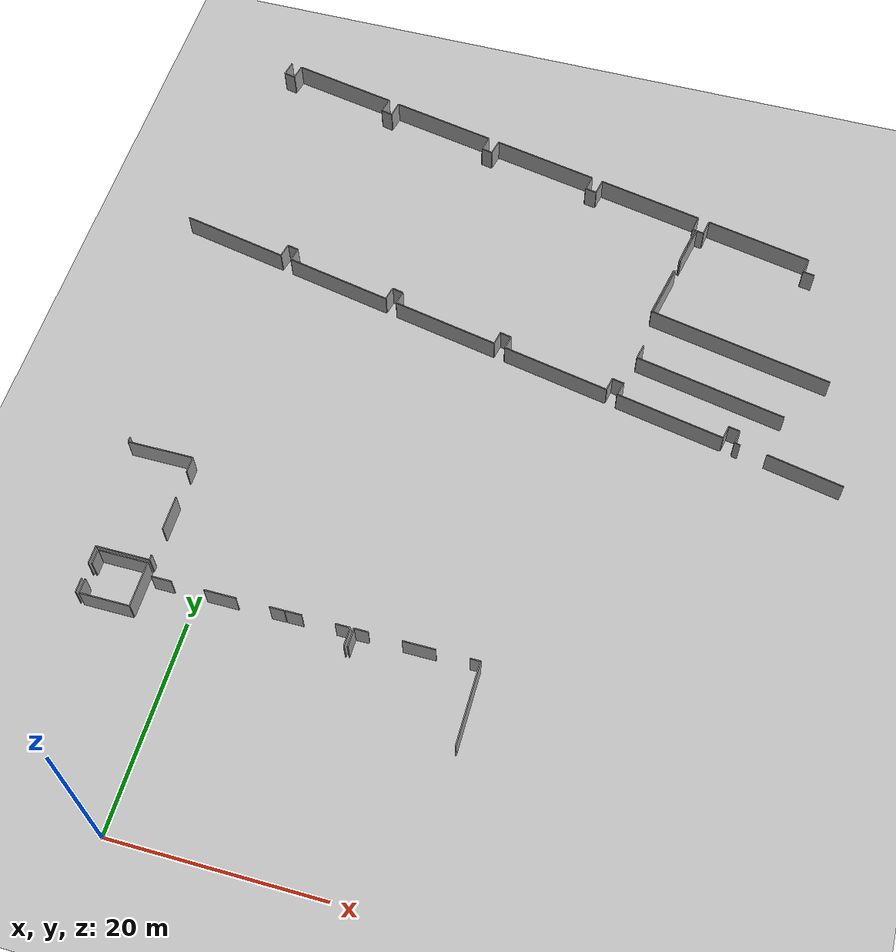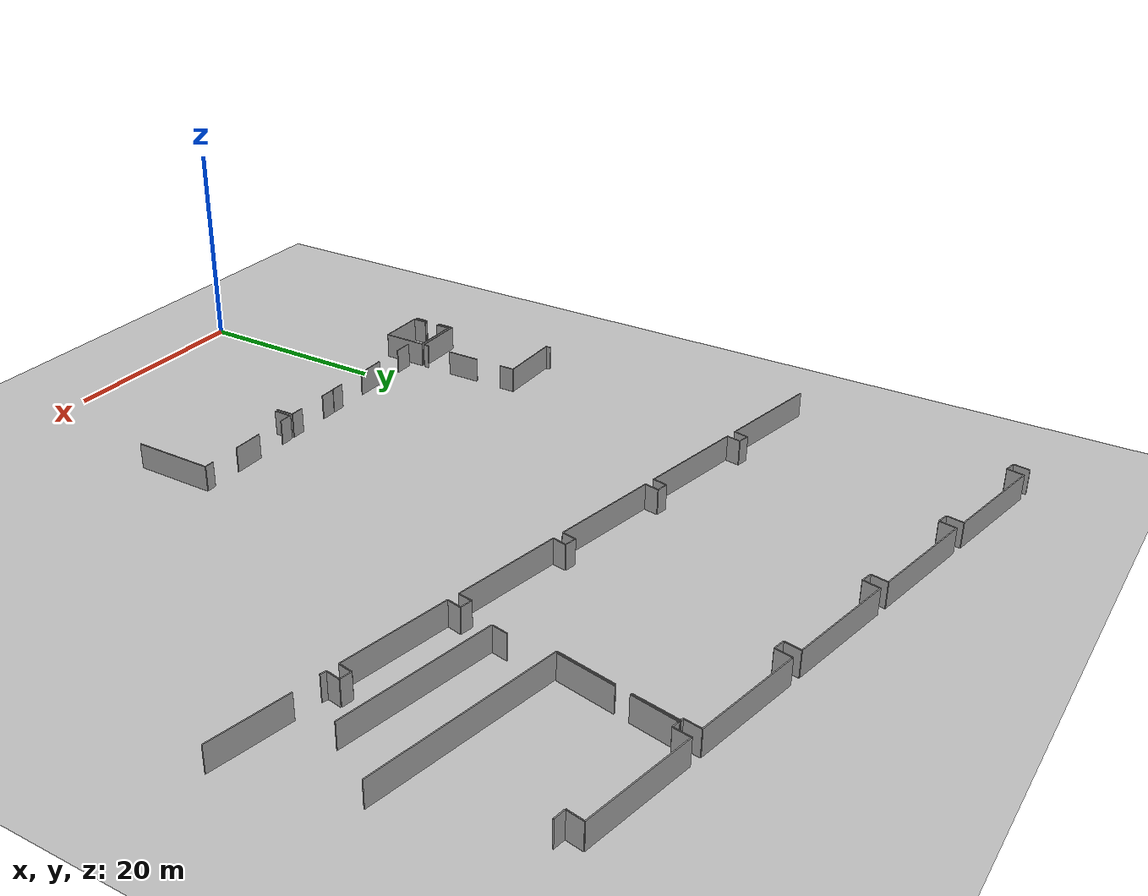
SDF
<sdf version="1.6">
 <world name="default">
  <model name="ground_plane">
   <static>1</static>
   <link name="link">
    <collision name="collision">
     <geometry><plane><normal>0 0 1</normal><size>100 100</size></plane></geometry>
     <surface><friction><ode><mu>100</mu><mu2>50</mu2></ode></friction></surface>
    </collision>
    <visual name="visual">
     <cast_shadows>0</cast_shadows>
     <geometry><plane><normal>0 0 1</normal><size>100 100</size></plane></geometry>
     <material>
      <script><uri>file://media/materials/scripts/gazebo.material</uri><name>Gazebo/Grey</name></script>
     </material>
    </visual>
   </link>
  </model>
  <model name="0510045922_A-40">
   <static>1</static>
   <link name="Wall_151">
    <collision name="Wall_151_Collision">
     <geometry><box><size>1.56576372229 0.1 2.5</size></box></geometry>
     <pose>0.782881861144 0 1.25 0 0 0</pose>
    </collision>
    <visual name="Wall_151_Visual">
     <pose>0.782881861144 0 1.25 0 0 0</pose>
     <geometry><box><size>1.56576372229 0.1 2.5</size></box></geometry>
     <material>
      <script><uri>file://media/materials/scripts/gazebo.material</uri><name>Gazebo/Grey</name></script>
      <ambient>1 1 1 1</ambient>
     </material>
    </visual>
    <pose>122.218771049 -16.4647391498 0 0 0 -1.75841792937</pose>
   </link>
   <link name="Wall_152">
    <collision name="Wall_152_Collision">
     <geometry><box><size>1.18365096837 0.1 2.5</size></box></geometry>
     <pose>0.591825484186 0 1.25 0 0 0</pose>
    </collision>
    <visual name="Wall_152_Visual">
     <pose>0.591825484186 0 1.25 0 0 0</pose>
     <geometry><box><size>1.18365096837 0.1 2.5</size></box></geometry>
     <material>
      <script><uri>file://media/materials/scripts/gazebo.material</uri><name>Gazebo/Grey</name></script>
      <ambient>1 1 1 1</ambient>
     </material>
    </visual>
    <pose>121.926720468 -18.0030247188 0 0 0 -0.196679619774</pose>
   </link>
   <link name="Wall_153">
    <collision name="Wall_153_Collision">
     <geometry><box><size>1.58743881891 0.1 2.5</size></box></geometry>
     <pose>0.793719409457 0 1.25 0 0 0</pose>
    </collision>
    <visual name="Wall_153_Visual">
     <pose>0.793719409457 0 1.25 0 0 0</pose>
     <geometry><box><size>1.58743881891 0.1 2.5</size></box></geometry>
     <material>
      <script><uri>file://media/materials/scripts/gazebo.material</uri><name>Gazebo/Grey</name></script>
      <ambient>1 1 1 1</ambient>
     </material>
    </visual>
    <pose>123.08755163 -18.2343267459 0 0 0 1.38250741131</pose>
   </link>
   <link name="Wall_154">
    <collision name="Wall_154_Collision">
     <geometry><box><size>10.840457798 0.1 2.5</size></box></geometry>
     <pose>5.42022889901 0 1.25 0 0 0</pose>
    </collision>
    <visual name="Wall_154_Visual">
     <pose>5.42022889901 0 1.25 0 0 0</pose>
     <geometry><box><size>10.840457798 0.1 2.5</size></box></geometry>
     <material>
      <script><uri>file://media/materials/scripts/gazebo.material</uri><name>Gazebo/Grey</name></script>
      <ambient>1 1 1 1</ambient>
     </material>
    </visual>
    <pose>123.384685772 -16.6749443986 0 0 0 -0.190318612014</pose>
   </link>
   <link name="Wall_155">
    <collision name="Wall_155_Collision">
     <geometry><box><size>1.60413812407 0.1 2.5</size></box></geometry>
     <pose>0.802069062037 0 1.25 0 0 0</pose>
    </collision>
    <visual name="Wall_155_Visual">
     <pose>0.802069062037 0 1.25 0 0 0</pose>
     <geometry><box><size>1.60413812407 0.1 2.5</size></box></geometry>
     <material>
      <script><uri>file://media/materials/scripts/gazebo.material</uri><name>Gazebo/Grey</name></script>
      <ambient>1 1 1 1</ambient>
     </material>
    </visual>
    <pose>134.029408401 -18.7256529199 0 0 0 -1.76371708743</pose>
   </link>
   <link name="Wall_156">
    <collision name="Wall_156_Collision">
     <geometry><box><size>1.18715771297 0.1 2.5</size></box></geometry>
     <pose>0.593578856483 0 1.25 0 0 0</pose>
    </collision>
    <visual name="Wall_156_Visual">
     <pose>0.593578856483 0 1.25 0 0 0</pose>
     <geometry><box><size>1.18715771297 0.1 2.5</size></box></geometry>
     <material>
      <script><uri>file://media/materials/scripts/gazebo.material</uri><name>Gazebo/Grey</name></script>
      <ambient>1 1 1 1</ambient>
     </material>
    </visual>
    <pose>133.721852958 -20.3000317723 0 0 0 -0.229607243412</pose>
   </link>
   <link name="Wall_157">
    <collision name="Wall_157_Collision">
     <geometry><box><size>1.61920516432 0.1 2.5</size></box></geometry>
     <pose>0.809602582161 0 1.25 0 0 0</pose>
    </collision>
    <visual name="Wall_157_Visual">
     <pose>0.809602582161 0 1.25 0 0 0</pose>
     <geometry><box><size>1.61920516432 0.1 2.5</size></box></geometry>
     <material>
      <script><uri>file://media/materials/scripts/gazebo.material</uri><name>Gazebo/Grey</name></script>
      <ambient>1 1 1 1</ambient>
     </material>
    </visual>
    <pose>134.877854737 -20.5702230412 0 0 0 1.37937323457</pose>
   </link>
   <link name="Wall_158">
    <collision name="Wall_158_Collision">
     <geometry><box><size>10.8308114585 0.1 2.5</size></box></geometry>
     <pose>5.41540572925 0 1.25 0 0 0</pose>
    </collision>
    <visual name="Wall_158_Visual">
     <pose>5.41540572925 0 1.25 0 0 0</pose>
     <geometry><box><size>10.8308114585 0.1 2.5</size></box></geometry>
     <material>
      <script><uri>file://media/materials/scripts/gazebo.material</uri><name>Gazebo/Grey</name></script>
      <ambient>1 1 1 1</ambient>
     </material>
    </visual>
    <pose>135.185918536 -18.9805935058 0 0 0 -0.190657501931</pose>
   </link>
   <link name="Wall_159">
    <collision name="Wall_159_Collision">
     <geometry><box><size>1.58493059939 0.1 2.5</size></box></geometry>
     <pose>0.792465299693 0 1.25 0 0 0</pose>
    </collision>
    <visual name="Wall_159_Visual">
     <pose>0.792465299693 0 1.25 0 0 0</pose>
     <geometry><box><size>1.58493059939 0.1 2.5</size></box></geometry>
     <material>
      <script><uri>file://media/materials/scripts/gazebo.material</uri><name>Gazebo/Grey</name></script>
      <ambient>1 1 1 1</ambient>
     </material>
    </visual>
    <pose>145.820474042 -21.0330812734 0 0 0 -1.76772011439</pose>
   </link>
   <link name="Wall_160">
    <collision name="Wall_160_Collision">
     <geometry><box><size>1.14771959508 0.1 2.5</size></box></geometry>
     <pose>0.573859797541 0 1.25 0 0 0</pose>
    </collision>
    <visual name="Wall_160_Visual">
     <pose>0.573859797541 0 1.25 0 0 0</pose>
     <geometry><box><size>1.14771959508 0.1 2.5</size></box></geometry>
     <material>
      <script><uri>file://media/materials/scripts/gazebo.material</uri><name>Gazebo/Grey</name></script>
      <ambient>1 1 1 1</ambient>
     </material>
    </visual>
    <pose>145.510376819 -22.5873800597 0 0 0 -0.220590634597</pose>
   </link>
   <link name="Wall_161">
    <collision name="Wall_161_Collision">
     <geometry><box><size>1.61166854661 0.1 2.5</size></box></geometry>
     <pose>0.805834273306 0 1.25 0 0 0</pose>
    </collision>
    <visual name="Wall_161_Visual">
     <pose>0.805834273306 0 1.25 0 0 0</pose>
     <geometry><box><size>1.61166854661 0.1 2.5</size></box></geometry>
     <material>
      <script><uri>file://media/materials/scripts/gazebo.material</uri><name>Gazebo/Grey</name></script>
      <ambient>1 1 1 1</ambient>
     </material>
    </visual>
    <pose>146.630285315 -22.8385079748 0 0 0 1.36124509732</pose>
   </link>
   <link name="Wall_162">
    <collision name="Wall_162_Collision">
     <geometry><box><size>10.8556692033 0.1 2.5</size></box></geometry>
     <pose>5.42783460166 0 1.25 0 0 0</pose>
    </collision>
    <visual name="Wall_162_Visual">
     <pose>5.42783460166 0 1.25 0 0 0</pose>
     <geometry><box><size>10.8556692033 0.1 2.5</size></box></geometry>
     <material>
      <script><uri>file://media/materials/scripts/gazebo.material</uri><name>Gazebo/Grey</name></script>
      <ambient>1 1 1 1</ambient>
     </material>
    </visual>
    <pose>146.965546165 -21.262095698 0 0 0 -0.191646438272</pose>
   </link>
   <link name="Wall_163">
    <collision name="Wall_163_Collision">
     <geometry><box><size>1.59262046691 0.1 2.5</size></box></geometry>
     <pose>0.796310233457 0 1.25 0 0 0</pose>
    </collision>
    <visual name="Wall_163_Visual">
     <pose>0.796310233457 0 1.25 0 0 0</pose>
     <geometry><box><size>1.59262046691 0.1 2.5</size></box></geometry>
     <material>
      <script><uri>file://media/materials/scripts/gazebo.material</uri><name>Gazebo/Grey</name></script>
      <ambient>1 1 1 1</ambient>
     </material>
    </visual>
    <pose>157.62246934 -23.3298341488 0 0 0 -1.7722921485</pose>
   </link>
   <link name="Wall_164">
    <collision name="Wall_164_Collision">
     <geometry><box><size>1.17682143187 0.1 2.5</size></box></geometry>
     <pose>0.588410715936 0 1.25 0 0 0</pose>
    </collision>
    <visual name="Wall_164_Visual">
     <pose>0.588410715936 0 1.25 0 0 0</pose>
     <geometry><box><size>1.17682143187 0.1 2.5</size></box></geometry>
     <material>
      <script><uri>file://media/materials/scripts/gazebo.material</uri><name>Gazebo/Grey</name></script>
      <ambient>1 1 1 1</ambient>
     </material>
    </visual>
    <pose>157.303730063 -24.8902332084 0 0 0 -0.19739555985</pose>
   </link>
   <link name="Wall_165">
    <collision name="Wall_165_Collision">
     <geometry><box><size>1.61212168316 0.1 2.5</size></box></geometry>
     <pose>0.806060841578 0 1.25 0 0 0</pose>
    </collision>
    <visual name="Wall_165_Visual">
     <pose>0.806060841578 0 1.25 0 0 0</pose>
     <geometry><box><size>1.61212168316 0.1 2.5</size></box></geometry>
     <material>
      <script><uri>file://media/materials/scripts/gazebo.material</uri><name>Gazebo/Grey</name></script>
      <ambient>1 1 1 1</ambient>
     </material>
    </visual>
    <pose>158.457698418 -25.1210268793 0 0 0 1.37884289009</pose>
   </link>
   <link name="Wall_166">
    <collision name="Wall_166_Collision">
     <geometry><box><size>10.7712503803 0.1 2.5</size></box></geometry>
     <pose>5.38562519015 0 1.25 0 0 0</pose>
    </collision>
    <visual name="Wall_166_Visual">
     <pose>5.38562519015 0 1.25 0 0 0</pose>
     <geometry><box><size>10.7712503803 0.1 2.5</size></box></geometry>
     <material>
      <script><uri>file://media/materials/scripts/gazebo.material</uri><name>Gazebo/Grey</name></script>
      <ambient>1 1 1 1</ambient>
     </material>
    </visual>
    <pose>158.76525386 -23.5385143293 0 0 0 -0.192999027676</pose>
   </link>
   <link name="Wall_167">
    <collision name="Wall_167_Collision">
     <geometry><box><size>1.59503777452 0.1 2.5</size></box></geometry>
     <pose>0.797518887258 0 1.25 0 0 0</pose>
    </collision>
    <visual name="Wall_167_Visual">
     <pose>0.797518887258 0 1.25 0 0 0</pose>
     <geometry><box><size>1.59503777452 0.1 2.5</size></box></geometry>
     <material>
      <script><uri>file://media/materials/scripts/gazebo.material</uri><name>Gazebo/Grey</name></script>
      <ambient>1 1 1 1</ambient>
     </material>
    </visual>
    <pose>169.336519032 -25.6044735337 0 0 0 -1.73487089077</pose>
   </link>
   <link name="Wall_168">
    <collision name="Wall_168_Collision">
     <geometry><box><size>0.264227468039 0.1 2.5</size></box></geometry>
     <pose>0.132113734019 0 1.25 0 0 0</pose>
    </collision>
    <visual name="Wall_168_Visual">
     <pose>0.132113734019 0 1.25 0 0 0</pose>
     <geometry><box><size>0.264227468039 0.1 2.5</size></box></geometry>
     <material>
      <script><uri>file://media/materials/scripts/gazebo.material</uri><name>Gazebo/Grey</name></script>
      <ambient>1 1 1 1</ambient>
     </material>
    </visual>
    <pose>169.075986529 -27.1780898519 0 0 0 -0.222112170998</pose>
   </link>
   <link name="Wall_169">
    <collision name="Wall_169_Collision">
     <geometry><box><size>4.24023977097 0.1 2.5</size></box></geometry>
     <pose>2.12011988549 0 1.25 0 0 0</pose>
    </collision>
    <visual name="Wall_169_Visual">
     <pose>2.12011988549 0 1.25 0 0 0</pose>
     <geometry><box><size>4.24023977097 0.1 2.5</size></box></geometry>
     <material>
      <script><uri>file://media/materials/scripts/gazebo.material</uri><name>Gazebo/Grey</name></script>
      <ambient>1 1 1 1</ambient>
     </material>
    </visual>
    <pose>169.333723073 -27.2362966258 0 0 0 -1.74899309824</pose>
   </link>
   <link name="Wall_170">
    <collision name="Wall_170_Collision">
     <geometry><box><size>5.55386279195 0.1 2.5</size></box></geometry>
     <pose>2.77693139597 0 1.25 0 0 0</pose>
    </collision>
    <visual name="Wall_170_Visual">
     <pose>2.77693139597 0 1.25 0 0 0</pose>
     <geometry><box><size>5.55386279195 0.1 2.5</size></box></geometry>
     <material>
      <script><uri>file://media/materials/scripts/gazebo.material</uri><name>Gazebo/Grey</name></script>
      <ambient>1 1 1 1</ambient>
     </material>
    </visual>
    <pose>168.276342378 -32.8536315689 0 0 0 -1.76748282604</pose>
   </link>
   <link name="Wall_171">
    <collision name="Wall_171_Collision">
     <geometry><box><size>18.6598168076 0.1 2.5</size></box></geometry>
     <pose>9.32990840381 0 1.25 0 0 0</pose>
    </collision>
    <visual name="Wall_171_Visual">
     <pose>9.32990840381 0 1.25 0 0 0</pose>
     <geometry><box><size>18.6598168076 0.1 2.5</size></box></geometry>
     <material>
      <script><uri>file://media/materials/scripts/gazebo.material</uri><name>Gazebo/Grey</name></script>
      <ambient>1 1 1 1</ambient>
     </material>
    </visual>
    <pose>167.191002097 -38.3004130393 0 0 0 -0.192669780435</pose>
   </link>
   <link name="Wall_178">
    <collision name="Wall_178_Collision">
     <geometry><box><size>1.57625729106 0.1 2.5</size></box></geometry>
     <pose>0.78812864553 0 1.25 0 0 0</pose>
    </collision>
    <visual name="Wall_178_Visual">
     <pose>0.78812864553 0 1.25 0 0 0</pose>
     <geometry><box><size>1.57625729106 0.1 2.5</size></box></geometry>
     <material>
      <script><uri>file://media/materials/scripts/gazebo.material</uri><name>Gazebo/Grey</name></script>
      <ambient>1 1 1 1</ambient>
     </material>
    </visual>
    <pose>167.292673318 -42.4943508928 0 0 0 -1.76898250031</pose>
   </link>
   <link name="Wall_179">
    <collision name="Wall_179_Collision">
     <geometry><box><size>15.2346814974 0.1 2.5</size></box></geometry>
     <pose>7.61734074872 0 1.25 0 0 0</pose>
    </collision>
    <visual name="Wall_179_Visual">
     <pose>7.61734074872 0 1.25 0 0 0</pose>
     <geometry><box><size>15.2346814974 0.1 2.5</size></box></geometry>
     <material>
      <script><uri>file://media/materials/scripts/gazebo.material</uri><name>Gazebo/Grey</name></script>
      <ambient>1 1 1 1</ambient>
     </material>
    </visual>
    <pose>166.982321917 -44.0397534473 0 0 0 -0.192844142897</pose>
   </link>
   <link name="Wall_181">
    <collision name="Wall_181_Collision">
     <geometry><box><size>7.617785318 0.1 2.5</size></box></geometry>
     <pose>3.808892659 0 1.25 0 0 0</pose>
    </collision>
    <visual name="Wall_181_Visual">
     <pose>3.808892659 0 1.25 0 0 0</pose>
     <geometry><box><size>7.617785318 0.1 2.5</size></box></geometry>
     <material>
      <script><uri>file://media/materials/scripts/gazebo.material</uri><name>Gazebo/Grey</name></script>
      <ambient>1 1 1 1</ambient>
     </material>
    </visual>
    <pose>181.042435026 -51.4378598208 0 0 0 -0.197271229761</pose>
   </link>
   <link name="Wall_185">
    <collision name="Wall_185_Collision">
     <geometry><box><size>0.579149529534 0.1 2.5</size></box></geometry>
     <pose>0.289574764767 0 1.25 0 0 0</pose>
    </collision>
    <visual name="Wall_185_Visual">
     <pose>0.289574764767 0 1.25 0 0 0</pose>
     <geometry><box><size>0.579149529534 0.1 2.5</size></box></geometry>
     <material>
      <script><uri>file://media/materials/scripts/gazebo.material</uri><name>Gazebo/Grey</name></script>
      <ambient>1 1 1 1</ambient>
     </material>
    </visual>
    <pose>178.456173349 -51.0924318485 0 0 0 2.87830452817</pose>
   </link>
   <link name="Wall_186">
    <collision name="Wall_186_Collision">
     <geometry><box><size>1.38386824179 0.1 2.5</size></box></geometry>
     <pose>0.691934120893 0 1.25 0 0 0</pose>
    </collision>
    <visual name="Wall_186_Visual">
     <pose>0.691934120893 0 1.25 0 0 0</pose>
     <geometry><box><size>1.38386824179 0.1 2.5</size></box></geometry>
     <material>
      <script><uri>file://media/materials/scripts/gazebo.material</uri><name>Gazebo/Grey</name></script>
      <ambient>1 1 1 1</ambient>
     </material>
    </visual>
    <pose>177.896981636 -50.9417042638 0 0 0 1.39335776538</pose>
   </link>
   <link name="Wall_187">
    <collision name="Wall_187_Collision">
     <geometry><box><size>1.13781072326 0.1 2.5</size></box></geometry>
     <pose>0.568905361628 0 1.25 0 0 0</pose>
    </collision>
    <visual name="Wall_187_Visual">
     <pose>0.568905361628 0 1.25 0 0 0</pose>
     <geometry><box><size>1.13781072326 0.1 2.5</size></box></geometry>
     <material>
      <script><uri>file://media/materials/scripts/gazebo.material</uri><name>Gazebo/Grey</name></script>
      <ambient>1 1 1 1</ambient>
     </material>
    </visual>
    <pose>178.141246743 -49.5795640846 0 0 0 2.95532527088</pose>
   </link>
   <link name="Wall_188">
    <collision name="Wall_188_Collision">
     <geometry><box><size>1.37960508459 0.1 2.5</size></box></geometry>
     <pose>0.689802542294 0 1.25 0 0 0</pose>
    </collision>
    <visual name="Wall_188_Visual">
     <pose>0.689802542294 0 1.25 0 0 0</pose>
     <geometry><box><size>1.37960508459 0.1 2.5</size></box></geometry>
     <material>
      <script><uri>file://media/materials/scripts/gazebo.material</uri><name>Gazebo/Grey</name></script>
      <ambient>1 1 1 1</ambient>
     </material>
    </visual>
    <pose>177.023117494 -49.3688504798 0 0 0 -1.76754150373</pose>
   </link>
   <link name="Wall_189">
    <collision name="Wall_189_Collision">
     <geometry><box><size>10.891760819 0.1 2.5</size></box></geometry>
     <pose>5.44588040948 0 1.25 0 0 0</pose>
    </collision>
    <visual name="Wall_189_Visual">
     <pose>5.44588040948 0 1.25 0 0 0</pose>
     <geometry><box><size>10.891760819 0.1 2.5</size></box></geometry>
     <material>
      <script><uri>file://media/materials/scripts/gazebo.material</uri><name>Gazebo/Grey</name></script>
      <ambient>1 1 1 1</ambient>
     </material>
    </visual>
    <pose>176.753434581 -50.7218402491 0 0 0 2.95137343467</pose>
   </link>
   <link name="Wall_190">
    <collision name="Wall_190_Collision">
     <geometry><box><size>1.41770943102 0.1 2.5</size></box></geometry>
     <pose>0.708854715509 0 1.25 0 0 0</pose>
    </collision>
    <visual name="Wall_190_Visual">
     <pose>0.708854715509 0 1.25 0 0 0</pose>
     <geometry><box><size>1.41770943102 0.1 2.5</size></box></geometry>
     <material>
      <script><uri>file://media/materials/scripts/gazebo.material</uri><name>Gazebo/Grey</name></script>
      <ambient>1 1 1 1</ambient>
     </material>
    </visual>
    <pose>166.05813052 -48.662489674 0 0 0 1.33942847783</pose>
   </link>
   <link name="Wall_191">
    <collision name="Wall_191_Collision">
     <geometry><box><size>1.20872522471 0.1 2.5</size></box></geometry>
     <pose>0.604362612353 0 1.25 0 0 0</pose>
    </collision>
    <visual name="Wall_191_Visual">
     <pose>0.604362612353 0 1.25 0 0 0</pose>
     <geometry><box><size>1.20872522471 0.1 2.5</size></box></geometry>
     <material>
      <script><uri>file://media/materials/scripts/gazebo.material</uri><name>Gazebo/Grey</name></script>
      <ambient>1 1 1 1</ambient>
     </material>
    </visual>
    <pose>166.383224249 -47.2825570312 0 0 0 2.94304235984</pose>
   </link>
   <link name="Wall_192">
    <collision name="Wall_192_Collision">
     <geometry><box><size>1.38610327587 0.1 2.5</size></box></geometry>
     <pose>0.693051637933 0 1.25 0 0 0</pose>
    </collision>
    <visual name="Wall_192_Visual">
     <pose>0.693051637933 0 1.25 0 0 0</pose>
     <geometry><box><size>1.38610327587 0.1 2.5</size></box></geometry>
     <material>
      <script><uri>file://media/materials/scripts/gazebo.material</uri><name>Gazebo/Grey</name></script>
      <ambient>1 1 1 1</ambient>
     </material>
    </visual>
    <pose>165.198246171 -47.0441380187 0 0 0 -1.74366266828</pose>
   </link>
   <link name="Wall_193">
    <collision name="Wall_193_Collision">
     <geometry><box><size>10.8683468807 0.1 2.5</size></box></geometry>
     <pose>5.43417344036 0 1.25 0 0 0</pose>
    </collision>
    <visual name="Wall_193_Visual">
     <pose>5.43417344036 0 1.25 0 0 0</pose>
     <geometry><box><size>10.8683468807 0.1 2.5</size></box></geometry>
     <material>
      <script><uri>file://media/materials/scripts/gazebo.material</uri><name>Gazebo/Grey</name></script>
      <ambient>1 1 1 1</ambient>
     </material>
    </visual>
    <pose>164.959827159 -48.4095825126 0 0 0 2.95019636129</pose>
   </link>
   <link name="Wall_194">
    <collision name="Wall_194_Collision">
     <geometry><box><size>1.37380516449 0.1 2.5</size></box></geometry>
     <pose>0.686902582247 0 1.25 0 0 0</pose>
    </collision>
    <visual name="Wall_194_Visual">
     <pose>0.686902582247 0 1.25 0 0 0</pose>
     <geometry><box><size>1.37380516449 0.1 2.5</size></box></geometry>
     <material>
      <script><uri>file://media/materials/scripts/gazebo.material</uri><name>Gazebo/Grey</name></script>
      <ambient>1 1 1 1</ambient>
     </material>
    </visual>
    <pose>154.289940904 -46.3420982398 0 0 0 1.36244250033</pose>
   </link>
   <link name="Wall_195">
    <collision name="Wall_195_Collision">
     <geometry><box><size>1.16044507241 0.1 2.5</size></box></geometry>
     <pose>0.580222536206 0 1.25 0 0 0</pose>
    </collision>
    <visual name="Wall_195_Visual">
     <pose>0.580222536206 0 1.25 0 0 0</pose>
     <geometry><box><size>1.16044507241 0.1 2.5</size></box></geometry>
     <material>
      <script><uri>file://media/materials/scripts/gazebo.material</uri><name>Gazebo/Grey</name></script>
      <ambient>1 1 1 1</ambient>
     </material>
    </visual>
    <pose>154.574111965 -44.9980047023 0 0 0 2.93779656256</pose>
   </link>
   <link name="Wall_196">
    <collision name="Wall_196_Collision">
     <geometry><box><size>1.39824845624 0.1 2.5</size></box></geometry>
     <pose>0.69912422812 0 1.25 0 0 0</pose>
    </collision>
    <visual name="Wall_196_Visual">
     <pose>0.69912422812 0 1.25 0 0 0</pose>
     <geometry><box><size>1.39824845624 0.1 2.5</size></box></geometry>
     <material>
      <script><uri>file://media/materials/scripts/gazebo.material</uri><name>Gazebo/Grey</name></script>
      <ambient>1 1 1 1</ambient>
     </material>
    </visual>
    <pose>153.437681896 -44.7631441825 0 0 0 -1.76747887429</pose>
   </link>
   <link name="Wall_197">
    <collision name="Wall_197_Collision">
     <geometry><box><size>10.8291654977 0.1 2.5</size></box></geometry>
     <pose>5.41458274887 0 1.25 0 0 0</pose>
    </collision>
    <visual name="Wall_197_Visual">
     <pose>5.41458274887 0 1.25 0 0 0</pose>
     <geometry><box><size>10.8291654977 0.1 2.5</size></box></geometry>
     <material>
      <script><uri>file://media/materials/scripts/gazebo.material</uri><name>Gazebo/Grey</name></script>
      <ambient>1 1 1 1</ambient>
     </material>
    </visual>
    <pose>153.164440491 -46.1344347716 0 0 0 2.94937567559</pose>
   </link>
   <link name="Wall_198">
    <collision name="Wall_198_Collision">
     <geometry><box><size>1.3874920753 0.1 2.5</size></box></geometry>
     <pose>0.693746037652 0 1.25 0 0 0</pose>
    </collision>
    <visual name="Wall_198_Visual">
     <pose>0.693746037652 0 1.25 0 0 0</pose>
     <geometry><box><size>1.3874920753 0.1 2.5</size></box></geometry>
     <material>
      <script><uri>file://media/materials/scripts/gazebo.material</uri><name>Gazebo/Grey</name></script>
      <ambient>1 1 1 1</ambient>
     </material>
    </visual>
    <pose>142.534714367 -44.0656796086 0 0 0 1.37742460094</pose>
   </link>
   <link name="Wall_199">
    <collision name="Wall_199_Collision">
     <geometry><box><size>1.14114362269 0.1 2.5</size></box></geometry>
     <pose>0.570571811347 0 1.25 0 0 0</pose>
    </collision>
    <visual name="Wall_199_Visual">
     <pose>0.570571811347 0 1.25 0 0 0</pose>
     <geometry><box><size>1.14114362269 0.1 2.5</size></box></geometry>
     <material>
      <script><uri>file://media/materials/scripts/gazebo.material</uri><name>Gazebo/Grey</name></script>
      <ambient>1 1 1 1</ambient>
     </material>
    </visual>
    <pose>142.801347144 -42.7040477855 0 0 0 2.9393045939</pose>
   </link>
   <link name="Wall_200">
    <collision name="Wall_200_Collision">
     <geometry><box><size>1.41051414452 0.1 2.5</size></box></geometry>
     <pose>0.70525707226 0 1.25 0 0 0</pose>
    </collision>
    <visual name="Wall_200_Visual">
     <pose>0.70525707226 0 1.25 0 0 0</pose>
     <geometry><box><size>1.41051414452 0.1 2.5</size></box></geometry>
     <material>
      <script><uri>file://media/materials/scripts/gazebo.material</uri><name>Gazebo/Grey</name></script>
      <ambient>1 1 1 1</ambient>
     </material>
    </visual>
    <pose>141.683472072 -42.4747791828 0 0 0 -1.78027866637</pose>
   </link>
   <link name="Wall_201">
    <collision name="Wall_201_Collision">
     <geometry><box><size>10.8656610784 0.1 2.5</size></box></geometry>
     <pose>5.43283053921 0 1.25 0 0 0</pose>
    </collision>
    <visual name="Wall_201_Visual">
     <pose>5.43283053921 0 1.25 0 0 0</pose>
     <geometry><box><size>10.8656610784 0.1 2.5</size></box></geometry>
     <material>
      <script><uri>file://media/materials/scripts/gazebo.material</uri><name>Gazebo/Grey</name></script>
      <ambient>1 1 1 1</ambient>
     </material>
    </visual>
    <pose>141.3901506 -43.8544576476 0 0 0 2.94852789815</pose>
   </link>
   <link name="Wall_202">
    <collision name="Wall_202_Collision">
     <geometry><box><size>1.38434750144 0.1 2.5</size></box></geometry>
     <pose>0.692173750718 0 1.25 0 0 0</pose>
    </collision>
    <visual name="Wall_202_Visual">
     <pose>0.692173750718 0 1.25 0 0 0</pose>
     <geometry><box><size>1.38434750144 0.1 2.5</size></box></geometry>
     <material>
      <script><uri>file://media/materials/scripts/gazebo.material</uri><name>Gazebo/Grey</name></script>
      <ambient>1 1 1 1</ambient>
     </material>
    </visual>
    <pose>130.726364618 -41.7696892673 0 0 0 1.37660553794</pose>
   </link>
   <link name="Wall_203">
    <collision name="Wall_203_Collision">
     <geometry><box><size>1.14500596711 0.1 2.5</size></box></geometry>
     <pose>0.572502983556 0 1.25 0 0 0</pose>
    </collision>
    <visual name="Wall_203_Visual">
     <pose>0.572502983556 0 1.25 0 0 0</pose>
     <geometry><box><size>1.14500596711 0.1 2.5</size></box></geometry>
     <material>
      <script><uri>file://media/materials/scripts/gazebo.material</uri><name>Gazebo/Grey</name></script>
      <ambient>1 1 1 1</ambient>
     </material>
    </visual>
    <pose>130.993505751 -40.4113617589 0 0 0 2.93183269426</pose>
   </link>
   <link name="Wall_204">
    <collision name="Wall_204_Collision">
     <geometry><box><size>1.41830610369 0.1 2.5</size></box></geometry>
     <pose>0.709153051846 0 1.25 0 0 0</pose>
    </collision>
    <visual name="Wall_204_Visual">
     <pose>0.709153051846 0 1.25 0 0 0</pose>
     <geometry><box><size>1.41830610369 0.1 2.5</size></box></geometry>
     <material>
      <script><uri>file://media/materials/scripts/gazebo.material</uri><name>Gazebo/Grey</name></script>
      <ambient>1 1 1 1</ambient>
     </material>
    </visual>
    <pose>129.873597255 -40.1729427464 0 0 0 -1.78112613896</pose>
   </link>
   <link name="Wall_205">
    <collision name="Wall_205_Collision">
     <geometry><box><size>10.8502973592 0.1 2.5</size></box></geometry>
     <pose>5.42514867962 0 1.25 0 0 0</pose>
    </collision>
    <visual name="Wall_205_Visual">
     <pose>5.42514867962 0 1.25 0 0 0</pose>
     <geometry><box><size>10.8502973592 0.1 2.5</size></box></geometry>
     <material>
      <script><uri>file://media/materials/scripts/gazebo.material</uri><name>Gazebo/Grey</name></script>
      <ambient>1 1 1 1</ambient>
     </material>
    </visual>
    <pose>129.577479825 -41.5599923747 0 0 0 2.94930127016</pose>
   </link>
   <link name="Wall_214">
    <collision name="Wall_214_Collision">
     <geometry><box><size>5.51303558633 0.1 2.5</size></box></geometry>
     <pose>2.75651779317 0 1.25 0 0 0</pose>
    </collision>
    <visual name="Wall_214_Visual">
     <pose>2.75651779317 0 1.25 0 0 0</pose>
     <geometry><box><size>5.51303558633 0.1 2.5</size></box></geometry>
     <material>
      <script><uri>file://media/materials/scripts/gazebo.material</uri><name>Gazebo/Grey</name></script>
      <ambient>1 1 1 1</ambient>
     </material>
    </visual>
    <pose>167.354184406 -38.1936582576 0 0 0 1.3735273538</pose>
   </link>
   <link name="Wall_215">
    <collision name="Wall_215_Collision">
     <geometry><box><size>4.27058266255 0.1 2.5</size></box></geometry>
     <pose>2.13529133128 0 1.25 0 0 0</pose>
    </collision>
    <visual name="Wall_215_Visual">
     <pose>2.13529133128 0 1.25 0 0 0</pose>
     <geometry><box><size>4.27058266255 0.1 2.5</size></box></geometry>
     <material>
      <script><uri>file://media/materials/scripts/gazebo.material</uri><name>Gazebo/Grey</name></script>
      <ambient>1 1 1 1</ambient>
     </material>
    </visual>
    <pose>168.691415136 -31.4597191333 0 0 0 1.37637726129</pose>
   </link>
   <link name="Wall_216">
    <collision name="Wall_216_Collision">
     <geometry><box><size>0.743254957591 0.1 2.5</size></box></geometry>
     <pose>0.371627478796 0 1.25 0 0 0</pose>
    </collision>
    <visual name="Wall_216_Visual">
     <pose>0.371627478796 0 1.25 0 0 0</pose>
     <geometry><box><size>0.743254957591 0.1 2.5</size></box></geometry>
     <material>
      <script><uri>file://media/materials/scripts/gazebo.material</uri><name>Gazebo/Grey</name></script>
      <ambient>1 1 1 1</ambient>
     </material>
    </visual>
    <pose>169.516477092 -27.2695939506 0 0 0 -0.179822912205</pose>
   </link>
   <link name="Wall_217">
    <collision name="Wall_217_Collision">
     <geometry><box><size>1.60210272946 0.1 2.5</size></box></geometry>
     <pose>0.801051364732 0 1.25 0 0 0</pose>
    </collision>
    <visual name="Wall_217_Visual">
     <pose>0.801051364732 0 1.25 0 0 0</pose>
     <geometry><box><size>1.60210272946 0.1 2.5</size></box></geometry>
     <material>
      <script><uri>file://media/materials/scripts/gazebo.material</uri><name>Gazebo/Grey</name></script>
      <ambient>1 1 1 1</ambient>
     </material>
    </visual>
    <pose>170.247747347 -27.4025290716 0 0 0 1.40343064727</pose>
   </link>
   <link name="Wall_218">
    <collision name="Wall_218_Collision">
     <geometry><box><size>10.841868306 0.1 2.5</size></box></geometry>
     <pose>5.42093415299 0 1.25 0 0 0</pose>
    </collision>
    <visual name="Wall_218_Visual">
     <pose>5.42093415299 0 1.25 0 0 0</pose>
     <geometry><box><size>10.841868306 0.1 2.5</size></box></geometry>
     <material>
      <script><uri>file://media/materials/scripts/gazebo.material</uri><name>Gazebo/Grey</name></script>
      <ambient>1 1 1 1</ambient>
     </material>
    </visual>
    <pose>170.514634301 -25.8228124801 0 0 0 -0.194784023506</pose>
   </link>
   <link name="Wall_219">
    <collision name="Wall_219_Collision">
     <geometry><box><size>1.58464056468 0.1 2.5</size></box></geometry>
     <pose>0.792320282341 0 1.25 0 0 0</pose>
    </collision>
    <visual name="Wall_219_Visual">
     <pose>0.792320282341 0 1.25 0 0 0</pose>
     <geometry><box><size>1.58464056468 0.1 2.5</size></box></geometry>
     <material>
      <script><uri>file://media/materials/scripts/gazebo.material</uri><name>Gazebo/Grey</name></script>
      <ambient>1 1 1 1</ambient>
     </material>
    </visual>
    <pose>181.15147741 -27.9213064752 0 0 0 -1.75403565624</pose>
   </link>
   <link name="Wall_220">
    <collision name="Wall_220_Collision">
     <geometry><box><size>1.17232563578 0.1 2.5</size></box></geometry>
     <pose>0.586162817888 0 1.25 0 0 0</pose>
    </collision>
    <visual name="Wall_220_Visual">
     <pose>0.586162817888 0 1.25 0 0 0</pose>
     <geometry><box><size>1.17232563578 0.1 2.5</size></box></geometry>
     <material>
      <script><uri>file://media/materials/scripts/gazebo.material</uri><name>Gazebo/Grey</name></script>
      <ambient>1 1 1 1</ambient>
     </material>
    </visual>
    <pose>180.862731143 -29.4794179323 0 0 0 -0.167073465628</pose>
   </link>
   <link name="Wall_1209">
    <collision name="Wall_1209_Collision">
     <geometry><box><size>4.81743661435 0.1 2.5</size></box></geometry>
     <pose>2.40871830717 0 1.25 0 0 0</pose>
    </collision>
    <visual name="Wall_1209_Visual">
     <pose>2.40871830717 0 1.25 0 0 0</pose>
     <geometry><box><size>4.81743661435 0.1 2.5</size></box></geometry>
     <material>
      <script><uri>file://media/materials/scripts/gazebo.material</uri><name>Gazebo/Grey</name></script>
      <ambient>1 1 1 1</ambient>
     </material>
    </visual>
    <pose>124.462909068 -77.3807968482 0 0 0 0.0</pose>
   </link>
   <link name="Wall_1210">
    <collision name="Wall_1210_Collision">
     <geometry><box><size>4.41456440236 0.1 2.5</size></box></geometry>
     <pose>2.20728220118 0 1.25 0 0 0</pose>
    </collision>
    <visual name="Wall_1210_Visual">
     <pose>2.20728220118 0 1.25 0 0 0</pose>
     <geometry><box><size>4.41456440236 0.1 2.5</size></box></geometry>
     <material>
      <script><uri>file://media/materials/scripts/gazebo.material</uri><name>Gazebo/Grey</name></script>
      <ambient>1 1 1 1</ambient>
     </material>
    </visual>
    <pose>129.280345682 -77.3807968482 0 0 0 -1.57079632679</pose>
   </link>
   <link name="Wall_1211">
    <collision name="Wall_1211_Collision">
     <geometry><box><size>4.79837326047 0.1 2.5</size></box></geometry>
     <pose>2.39918663023 0 1.25 0 0 0</pose>
    </collision>
    <visual name="Wall_1211_Visual">
     <pose>2.39918663023 0 1.25 0 0 0</pose>
     <geometry><box><size>4.79837326047 0.1 2.5</size></box></geometry>
     <material>
      <script><uri>file://media/materials/scripts/gazebo.material</uri><name>Gazebo/Grey</name></script>
      <ambient>1 1 1 1</ambient>
     </material>
    </visual>
    <pose>129.280345682 -81.7953612506 0 0 0 3.14159265359</pose>
   </link>
   <link name="Wall_1212">
    <collision name="Wall_1212_Collision">
     <geometry><box><size>1.41628010421 0.1 2.5</size></box></geometry>
     <pose>0.708140052106 0 1.25 0 0 0</pose>
    </collision>
    <visual name="Wall_1212_Visual">
     <pose>0.708140052106 0 1.25 0 0 0</pose>
     <geometry><box><size>1.41628010421 0.1 2.5</size></box></geometry>
     <material>
      <script><uri>file://media/materials/scripts/gazebo.material</uri><name>Gazebo/Grey</name></script>
      <ambient>1 1 1 1</ambient>
     </material>
    </visual>
    <pose>124.481972422 -81.7953612506 0 0 0 1.57079632679</pose>
   </link>
   <link name="Wall_1213">
    <collision name="Wall_1213_Collision">
     <geometry><box><size>1.46215643123 0.1 2.5</size></box></geometry>
     <pose>0.731078215617 0 1.25 0 0 0</pose>
    </collision>
    <visual name="Wall_1213_Visual">
     <pose>0.731078215617 0 1.25 0 0 0</pose>
     <geometry><box><size>1.46215643123 0.1 2.5</size></box></geometry>
     <material>
      <script><uri>file://media/materials/scripts/gazebo.material</uri><name>Gazebo/Grey</name></script>
      <ambient>1 1 1 1</ambient>
     </material>
    </visual>
    <pose>124.481972422 -78.8428290017 0 0 0 1.58383453091</pose>
   </link>
   <link name="Wall_1231">
    <collision name="Wall_1231_Collision">
     <geometry><box><size>0.502764186313 0.1 2.5</size></box></geometry>
     <pose>0.251382093156 0 1.25 0 0 0</pose>
    </collision>
    <visual name="Wall_1231_Visual">
     <pose>0.251382093156 0 1.25 0 0 0</pose>
     <geometry><box><size>0.502764186313 0.1 2.5</size></box></geometry>
     <material>
      <script><uri>file://media/materials/scripts/gazebo.material</uri><name>Gazebo/Grey</name></script>
      <ambient>1 1 1 1</ambient>
     </material>
    </visual>
    <pose>122.858791383 -65.5744805236 0 0 0 -1.57079632679</pose>
   </link>
   <link name="Wall_1232">
    <collision name="Wall_1232_Collision">
     <geometry><box><size>6.46654381394 0.1 2.5</size></box></geometry>
     <pose>3.23327190697 0 1.25 0 0 0</pose>
    </collision>
    <visual name="Wall_1232_Visual">
     <pose>3.23327190697 0 1.25 0 0 0</pose>
     <geometry><box><size>6.46654381394 0.1 2.5</size></box></geometry>
     <material>
      <script><uri>file://media/materials/scripts/gazebo.material</uri><name>Gazebo/Grey</name></script>
      <ambient>1 1 1 1</ambient>
     </material>
    </visual>
    <pose>122.858791383 -66.0772447099 0 0 0 0.0</pose>
   </link>
   <link name="Wall_1233">
    <collision name="Wall_1233_Collision">
     <geometry><box><size>1.59954247951 0.1 2.5</size></box></geometry>
     <pose>0.799771239753 0 1.25 0 0 0</pose>
    </collision>
    <visual name="Wall_1233_Visual">
     <pose>0.799771239753 0 1.25 0 0 0</pose>
     <geometry><box><size>1.59954247951 0.1 2.5</size></box></geometry>
     <material>
      <script><uri>file://media/materials/scripts/gazebo.material</uri><name>Gazebo/Grey</name></script>
      <ambient>1 1 1 1</ambient>
     </material>
    </visual>
    <pose>129.325335197 -66.0772447099 0 0 0 -1.57079632679</pose>
   </link>
   <link name="Wall_1234">
    <collision name="Wall_1234_Collision">
     <geometry><box><size>3.39963144183 0.1 2.5</size></box></geometry>
     <pose>1.69981572091 0 1.25 0 0 0</pose>
    </collision>
    <visual name="Wall_1234_Visual">
     <pose>1.69981572091 0 1.25 0 0 0</pose>
     <geometry><box><size>3.39963144183 0.1 2.5</size></box></geometry>
     <material>
      <script><uri>file://media/materials/scripts/gazebo.material</uri><name>Gazebo/Grey</name></script>
      <ambient>1 1 1 1</ambient>
     </material>
    </visual>
    <pose>129.325335197 -70.4468195971 0 0 0 -1.57079632679</pose>
   </link>
   <link name="Wall_1235">
    <collision name="Wall_1235_Collision">
     <geometry><box><size>0.537586579399 0.1 2.5</size></box></geometry>
     <pose>0.268793289699 0 1.25 0 0 0</pose>
    </collision>
    <visual name="Wall_1235_Visual">
     <pose>0.268793289699 0 1.25 0 0 0</pose>
     <geometry><box><size>0.537586579399 0.1 2.5</size></box></geometry>
     <material>
      <script><uri>file://media/materials/scripts/gazebo.material</uri><name>Gazebo/Grey</name></script>
      <ambient>1 1 1 1</ambient>
     </material>
    </visual>
    <pose>129.325335197 -76.5473470166 0 0 0 -1.57079632679</pose>
   </link>
   <link name="Wall_1236">
    <collision name="Wall_1236_Collision">
     <geometry><box><size>5.18472389909 0.1 2.5</size></box></geometry>
     <pose>2.59236194955 0 1.25 0 0 0</pose>
    </collision>
    <visual name="Wall_1236_Visual">
     <pose>2.59236194955 0 1.25 0 0 0</pose>
     <geometry><box><size>5.18472389909 0.1 2.5</size></box></geometry>
     <material>
      <script><uri>file://media/materials/scripts/gazebo.material</uri><name>Gazebo/Grey</name></script>
      <ambient>1 1 1 1</ambient>
     </material>
    </visual>
    <pose>129.325335197 -77.084933596 0 0 0 3.14159265359</pose>
   </link>
   <link name="Wall_1237">
    <collision name="Wall_1237_Collision">
     <geometry><box><size>1.80313909894 0.1 2.5</size></box></geometry>
     <pose>0.901569549469 0 1.25 0 0 0</pose>
    </collision>
    <visual name="Wall_1237_Visual">
     <pose>0.901569549469 0 1.25 0 0 0</pose>
     <geometry><box><size>1.80313909894 0.1 2.5</size></box></geometry>
     <material>
      <script><uri>file://media/materials/scripts/gazebo.material</uri><name>Gazebo/Grey</name></script>
      <ambient>1 1 1 1</ambient>
     </material>
    </visual>
    <pose>124.140611298 -77.084933596 0 0 0 -1.57079632679</pose>
   </link>
   <link name="Wall_1238">
    <collision name="Wall_1238_Collision">
     <geometry><box><size>1.40941729682 0.1 2.5</size></box></geometry>
     <pose>0.704708648408 0 1.25 0 0 0</pose>
    </collision>
    <visual name="Wall_1238_Visual">
     <pose>0.704708648408 0 1.25 0 0 0</pose>
     <geometry><box><size>1.40941729682 0.1 2.5</size></box></geometry>
     <material>
      <script><uri>file://media/materials/scripts/gazebo.material</uri><name>Gazebo/Grey</name></script>
      <ambient>1 1 1 1</ambient>
     </material>
    </visual>
    <pose>124.140611298 -80.3943318294 0 0 0 -1.57079632679</pose>
   </link>
   <link name="Wall_1257">
    <collision name="Wall_1257_Collision">
     <geometry><box><size>1.33672237402 0.1 2.5</size></box></geometry>
     <pose>0.668361187012 0 1.25 0 0 0</pose>
    </collision>
    <visual name="Wall_1257_Visual">
     <pose>0.668361187012 0 1.25 0 0 0</pose>
     <geometry><box><size>1.33672237402 0.1 2.5</size></box></geometry>
     <material>
      <script><uri>file://media/materials/scripts/gazebo.material</uri><name>Gazebo/Grey</name></script>
      <ambient>1 1 1 1</ambient>
     </material>
    </visual>
    <pose>149.107504607 -78.539340408 0 0 0 0.0</pose>
   </link>
   <link name="Wall_1258">
    <collision name="Wall_1258_Collision">
     <geometry><box><size>3.07631696003 0.1 2.5</size></box></geometry>
     <pose>1.53815848002 0 1.25 0 0 0</pose>
    </collision>
    <visual name="Wall_1258_Visual">
     <pose>1.53815848002 0 1.25 0 0 0</pose>
     <geometry><box><size>3.07631696003 0.1 2.5</size></box></geometry>
     <material>
      <script><uri>file://media/materials/scripts/gazebo.material</uri><name>Gazebo/Grey</name></script>
      <ambient>1 1 1 1</ambient>
     </material>
    </visual>
    <pose>153.543928322 -78.539340408 0 0 0 0.0</pose>
   </link>
   <link name="Wall_1259">
    <collision name="Wall_1259_Collision">
     <geometry><box><size>0.952659337866 0.1 2.5</size></box></geometry>
     <pose>0.476329668933 0 1.25 0 0 0</pose>
    </collision>
    <visual name="Wall_1259_Visual">
     <pose>0.476329668933 0 1.25 0 0 0</pose>
     <geometry><box><size>0.952659337866 0.1 2.5</size></box></geometry>
     <material>
      <script><uri>file://media/materials/scripts/gazebo.material</uri><name>Gazebo/Grey</name></script>
      <ambient>1 1 1 1</ambient>
     </material>
    </visual>
    <pose>159.712067103 -78.539340408 0 0 0 0.0</pose>
   </link>
   <link name="Wall_1260">
    <collision name="Wall_1260_Collision">
     <geometry><box><size>7.94230158226 0.1 2.5</size></box></geometry>
     <pose>3.97115079113 0 1.25 0 0 0</pose>
    </collision>
    <visual name="Wall_1260_Visual">
     <pose>3.97115079113 0 1.25 0 0 0</pose>
     <geometry><box><size>7.94230158226 0.1 2.5</size></box></geometry>
     <material>
      <script><uri>file://media/materials/scripts/gazebo.material</uri><name>Gazebo/Grey</name></script>
      <ambient>1 1 1 1</ambient>
     </material>
    </visual>
    <pose>160.664726441 -78.539340408 0 0 0 -1.57079632679</pose>
   </link>
   <link name="Wall_1269">
    <collision name="Wall_1269_Collision">
     <geometry><box><size>1.81357436366 0.1 2.5</size></box></geometry>
     <pose>0.906787181829 0 1.25 0 0 0</pose>
    </collision>
    <visual name="Wall_1269_Visual">
     <pose>0.906787181829 0 1.25 0 0 0</pose>
     <geometry><box><size>1.81357436366 0.1 2.5</size></box></geometry>
     <material>
      <script><uri>file://media/materials/scripts/gazebo.material</uri><name>Gazebo/Grey</name></script>
      <ambient>1 1 1 1</ambient>
     </material>
    </visual>
    <pose>149.114621592 -80.352900807 0 0 0 1.5747206234</pose>
   </link>
   <link name="Wall_1273">
    <collision name="Wall_1273_Collision">
     <geometry><box><size>1.55556967656 0.1 2.5</size></box></geometry>
     <pose>0.777784838279 0 1.25 0 0 0</pose>
    </collision>
    <visual name="Wall_1273_Visual">
     <pose>0.777784838279 0 1.25 0 0 0</pose>
     <geometry><box><size>1.55556967656 0.1 2.5</size></box></geometry>
     <material>
      <script><uri>file://media/materials/scripts/gazebo.material</uri><name>Gazebo/Grey</name></script>
      <ambient>1 1 1 1</ambient>
     </material>
    </visual>
    <pose>142.725347906 -78.5538285569 0 0 0 0.0</pose>
   </link>
   <link name="Wall_1274">
    <collision name="Wall_1274_Collision">
     <geometry><box><size>1.40153777721 0.1 2.5</size></box></geometry>
     <pose>0.700768888606 0 1.25 0 0 0</pose>
    </collision>
    <visual name="Wall_1274_Visual">
     <pose>0.700768888606 0 1.25 0 0 0</pose>
     <geometry><box><size>1.40153777721 0.1 2.5</size></box></geometry>
     <material>
      <script><uri>file://media/materials/scripts/gazebo.material</uri><name>Gazebo/Grey</name></script>
      <ambient>1 1 1 1</ambient>
     </material>
    </visual>
    <pose>147.373501938 -78.5538285569 0 0 0 0.0</pose>
   </link>
   <link name="Wall_1275">
    <collision name="Wall_1275_Collision">
     <geometry><box><size>1.82067738451 0.1 2.5</size></box></geometry>
     <pose>0.910338692254 0 1.25 0 0 0</pose>
    </collision>
    <visual name="Wall_1275_Visual">
     <pose>0.910338692254 0 1.25 0 0 0</pose>
     <geometry><box><size>1.82067738451 0.1 2.5</size></box></geometry>
     <material>
      <script><uri>file://media/materials/scripts/gazebo.material</uri><name>Gazebo/Grey</name></script>
      <ambient>1 1 1 1</ambient>
     </material>
    </visual>
    <pose>148.775039715 -78.5538285569 0 0 0 -1.57079632679</pose>
   </link>
   <link name="Wall_1280">
    <collision name="Wall_1280_Collision">
     <geometry><box><size>1.90963970261 0.1 2.5</size></box></geometry>
     <pose>0.954819851306 0 1.25 0 0 0</pose>
    </collision>
    <visual name="Wall_1280_Visual">
     <pose>0.954819851306 0 1.25 0 0 0</pose>
     <geometry><box><size>1.90963970261 0.1 2.5</size></box></geometry>
     <material>
      <script><uri>file://media/materials/scripts/gazebo.material</uri><name>Gazebo/Grey</name></script>
      <ambient>1 1 1 1</ambient>
     </material>
    </visual>
    <pose>130.076177162 -78.5650123912 0 0 0 0.0</pose>
   </link>
   <link name="Wall_1281">
    <collision name="Wall_1281_Collision">
     <geometry><box><size>3.01938107644 0.1 2.5</size></box></geometry>
     <pose>1.50969053822 0 1.25 0 0 0</pose>
    </collision>
    <visual name="Wall_1281_Visual">
     <pose>1.50969053822 0 1.25 0 0 0</pose>
     <geometry><box><size>3.01938107644 0.1 2.5</size></box></geometry>
     <material>
      <script><uri>file://media/materials/scripts/gazebo.material</uri><name>Gazebo/Grey</name></script>
      <ambient>1 1 1 1</ambient>
     </material>
    </visual>
    <pose>135.099752176 -78.5650123912 0 0 0 0.0</pose>
   </link>
   <link name="Wall_1282">
    <collision name="Wall_1282_Collision">
     <geometry><box><size>1.38679545021 0.1 2.5</size></box></geometry>
     <pose>0.693397725106 0 1.25 0 0 0</pose>
    </collision>
    <visual name="Wall_1282_Visual">
     <pose>0.693397725106 0 1.25 0 0 0</pose>
     <geometry><box><size>1.38679545021 0.1 2.5</size></box></geometry>
     <material>
      <script><uri>file://media/materials/scripts/gazebo.material</uri><name>Gazebo/Grey</name></script>
      <ambient>1 1 1 1</ambient>
     </material>
    </visual>
    <pose>141.268653492 -78.5650123912 0 0 0 0.0</pose>
   </link>
   <pose>-134.15 101.210036856 0 0 0 0</pose>
  </model>
 </world>
</sdf>
